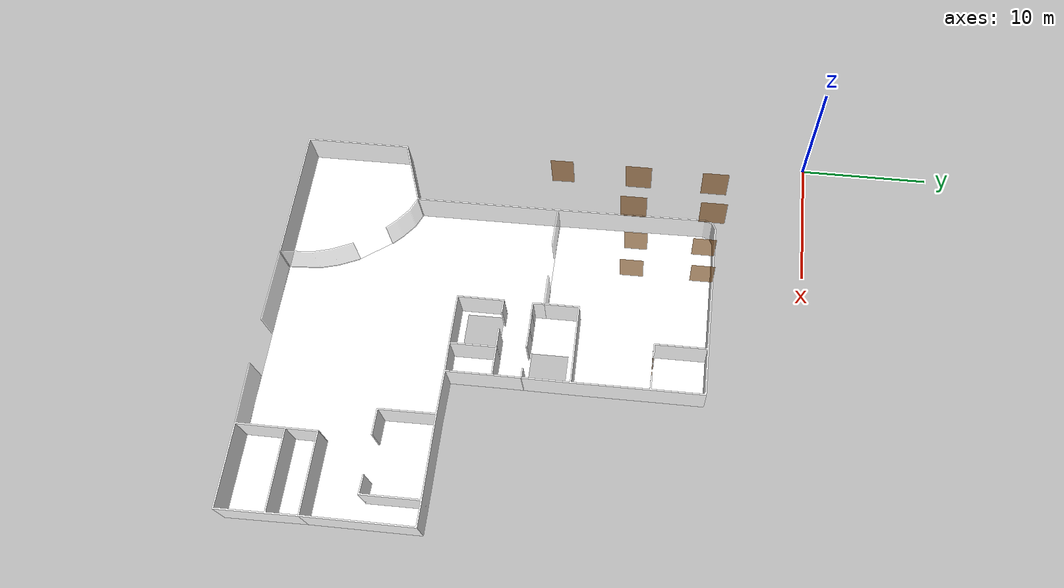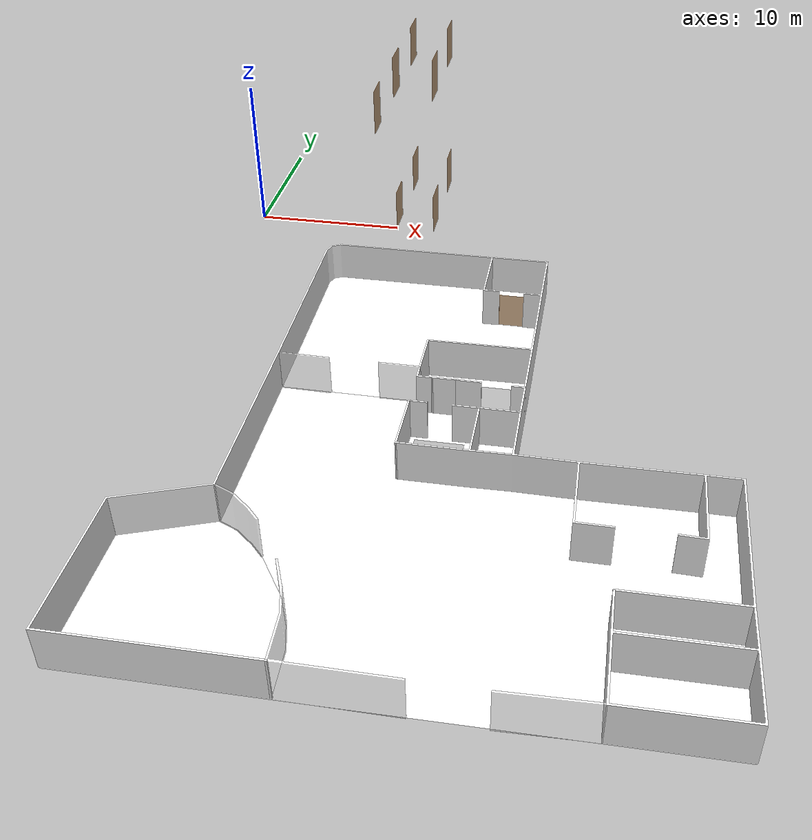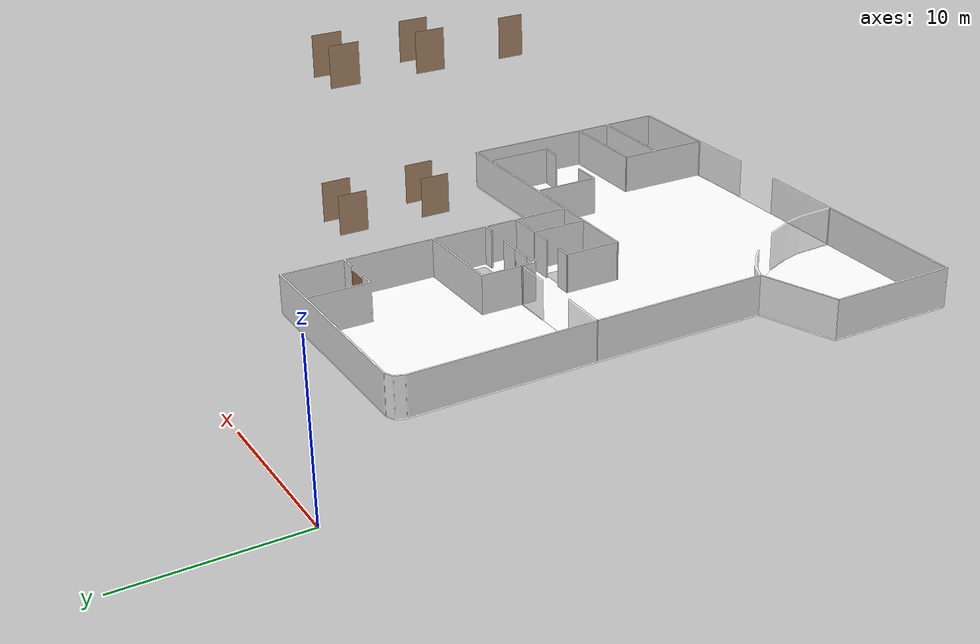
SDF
<sdf version="1.7">
 <world name="world">
  <include><uri>model://sun</uri></include>
  <model name="L1_door4">
   <pose>19.549120677562087 -11.10939551168469 0.0 0 0 -0.009497018345977264</pose>
   <link name="right">
    <pose>0 0 1.11 0 0 0</pose>
    <visual name="right_visual">
     <geometry><box><size>1.5905993122484277 0.03 2.2</size></box></geometry>
     <material><ambient>0.5 0.25 0 0.6</ambient><diffuse>0.5 0.25 0 0.6</diffuse></material>
    </visual>
    <collision name="right_collision">
     <geometry><box><size>1.5905993122484277 0.03 2.2</size></box></geometry>
     <surface><contact><collide_bitmask>0x02</collide_bitmask></contact></surface>
    </collision>
    <inertial>
     <mass>50.0</mass>
     <inertia><ixx>20.17041666666667</ixx><iyy>30.70835905052155</iyy><izz>10.545442383854882</izz></inertia>
    </inertial>
   </link>
   <joint name="right_joint" type="revolute">
    <parent>world</parent>
    <child>right</child>
    <axis><xyz>0 0 1</xyz><limit><lower>0</lower><upper>1.57</upper></limit></axis>
    <pose>0.8002996561242138 0 0 0 0 0</pose>
   </joint>
  </model>
  <include><name>hotel_L1</name><uri>model://hotel_L1_before</uri></include>
  <model name="L2_door11">
   <pose>13.070832545372092 -8.29507317951618 8.0 0 0 1.571612558028263</pose>
   <link name="right">
    <pose>0 0 1.11 0 0 0</pose>
    <visual name="right_visual">
     <geometry><box><size>1.5950330216253457 0.03 2.2</size></box></geometry>
     <material><ambient>0.5 0.25 0 0.6</ambient><diffuse>0.5 0.25 0 0.6</diffuse></material>
    </visual>
    <collision name="right_collision">
     <geometry><box><size>1.5950330216253457 0.03 2.2</size></box></geometry>
     <surface><contact><collide_bitmask>0x02</collide_bitmask></contact></surface>
    </collision>
    <inertial>
     <mass>50.0</mass>
     <inertia><ixx>20.17041666666667</ixx><iyy>30.767209750313672</iyy><izz>10.604293083647002</izz></inertia>
    </inertial>
   </link>
   <joint name="right_joint" type="revolute">
    <parent>world</parent>
    <child>right</child>
    <axis><xyz>0 0 -1</xyz><limit><lower>0</lower><upper>1.57</upper></limit></axis>
    <pose>0.8025165108126728 0 0 0 0 0</pose>
   </joint>
  </model>
  <model name="L2_door16">
   <pose>15.15470442617677 -8.29507317951618 8.0 0 0 1.571612558028263</pose>
   <link name="right">
    <pose>0 0 1.11 0 0 0</pose>
    <visual name="right_visual">
     <geometry><box><size>1.5950330216253457 0.03 2.2</size></box></geometry>
     <material><ambient>0.5 0.25 0 0.6</ambient><diffuse>0.5 0.25 0 0.6</diffuse></material>
    </visual>
    <collision name="right_collision">
     <geometry><box><size>1.5950330216253457 0.03 2.2</size></box></geometry>
     <surface><contact><collide_bitmask>0x02</collide_bitmask></contact></surface>
    </collision>
    <inertial>
     <mass>50.0</mass>
     <inertia><ixx>20.17041666666667</ixx><iyy>30.767209750313672</iyy><izz>10.604293083647002</izz></inertia>
    </inertial>
   </link>
   <joint name="right_joint" type="revolute">
    <parent>world</parent>
    <child>right</child>
    <axis><xyz>0 0 -1</xyz><limit><lower>0</lower><upper>1.57</upper></limit></axis>
    <pose>0.8025165108126728 0 0 0 0 0</pose>
   </joint>
  </model>
  <model name="L2_door17">
   <pose>13.010832545372092 -13.028327675 8.0 0 0 1.571612558028263</pose>
   <link name="right">
    <pose>0 0 1.11 0 0 0</pose>
    <visual name="right_visual">
     <geometry><box><size>1.5950330216253457 0.03 2.2</size></box></geometry>
     <material><ambient>0.5 0.25 0 0.6</ambient><diffuse>0.5 0.25 0 0.6</diffuse></material>
    </visual>
    <collision name="right_collision">
     <geometry><box><size>1.5950330216253457 0.03 2.2</size></box></geometry>
     <surface><contact><collide_bitmask>0x02</collide_bitmask></contact></surface>
    </collision>
    <inertial>
     <mass>50.0</mass>
     <inertia><ixx>20.17041666666667</ixx><iyy>30.767209750313672</iyy><izz>10.604293083647002</izz></inertia>
    </inertial>
   </link>
   <joint name="right_joint" type="revolute">
    <parent>world</parent>
    <child>right</child>
    <axis><xyz>0 0 -1</xyz><limit><lower>0</lower><upper>1.57</upper></limit></axis>
    <pose>0.8025165108126728 0 0 0 0 0</pose>
   </joint>
  </model>
  <model name="L2_door18">
   <pose>15.15470442617677 -13.148327675 8.0 0 0 1.571612558028263</pose>
   <link name="right">
    <pose>0 0 1.11 0 0 0</pose>
    <visual name="right_visual">
     <geometry><box><size>1.5950330216253457 0.03 2.2</size></box></geometry>
     <material><ambient>0.5 0.25 0 0.6</ambient><diffuse>0.5 0.25 0 0.6</diffuse></material>
    </visual>
    <collision name="right_collision">
     <geometry><box><size>1.5950330216253457 0.03 2.2</size></box></geometry>
     <surface><contact><collide_bitmask>0x02</collide_bitmask></contact></surface>
    </collision>
    <inertial>
     <mass>50.0</mass>
     <inertia><ixx>20.17041666666667</ixx><iyy>30.767209750313672</iyy><izz>10.604293083647002</izz></inertia>
    </inertial>
   </link>
   <joint name="right_joint" type="revolute">
    <parent>world</parent>
    <child>right</child>
    <axis><xyz>0 0 -1</xyz><limit><lower>0</lower><upper>1.57</upper></limit></axis>
    <pose>0.8025165108126728 0 0 0 0 0</pose>
   </joint>
  </model>
  <model name="L3_door9">
   <pose>13.018848337594756 -17.76158217016259 16.0 0 0 1.5874688733681936</pose>
   <link name="right">
    <pose>0 0 1.11 0 0 0</pose>
    <visual name="right_visual">
     <geometry><box><size>1.382945881897145 0.03 2.2</size></box></geometry>
     <material><ambient>0.5 0.25 0 0.6</ambient><diffuse>0.5 0.25 0 0.6</diffuse></material>
    </visual>
    <collision name="right_collision">
     <geometry><box><size>1.382945881897145 0.03 2.2</size></box></geometry>
     <surface><contact><collide_bitmask>0x02</collide_bitmask></contact></surface>
    </collision>
    <inertial>
     <mass>50.0</mass>
     <inertia><ixx>20.17041666666667</ixx><iyy>28.13558046773447</iyy><izz>7.9726638010677995</izz></inertia>
    </inertial>
   </link>
   <joint name="right_joint" type="revolute">
    <parent>world</parent>
    <child>right</child>
    <axis><xyz>0 0 -1</xyz><limit><lower>0</lower><upper>1.57</upper></limit></axis>
    <pose>0.6964729409485725 0 0 0 0 0</pose>
   </joint>
  </model>
  <model name="L3_door11">
   <pose>13.070832545372092 -8.29507317951618 16.0 0 0 1.571612558028263</pose>
   <link name="right">
    <pose>0 0 1.11 0 0 0</pose>
    <visual name="right_visual">
     <geometry><box><size>1.5950330216253457 0.03 2.2</size></box></geometry>
     <material><ambient>0.5 0.25 0 0.6</ambient><diffuse>0.5 0.25 0 0.6</diffuse></material>
    </visual>
    <collision name="right_collision">
     <geometry><box><size>1.5950330216253457 0.03 2.2</size></box></geometry>
     <surface><contact><collide_bitmask>0x02</collide_bitmask></contact></surface>
    </collision>
    <inertial>
     <mass>50.0</mass>
     <inertia><ixx>20.17041666666667</ixx><iyy>30.767209750313672</iyy><izz>10.604293083647002</izz></inertia>
    </inertial>
   </link>
   <joint name="right_joint" type="revolute">
    <parent>world</parent>
    <child>right</child>
    <axis><xyz>0 0 -1</xyz><limit><lower>0</lower><upper>1.57</upper></limit></axis>
    <pose>0.8025165108126728 0 0 0 0 0</pose>
   </joint>
  </model>
  <model name="L3_door16">
   <pose>15.15470442617677 -8.29507317951618 16.0 0 0 1.571612558028263</pose>
   <link name="right">
    <pose>0 0 1.11 0 0 0</pose>
    <visual name="right_visual">
     <geometry><box><size>1.5950330216253457 0.03 2.2</size></box></geometry>
     <material><ambient>0.5 0.25 0 0.6</ambient><diffuse>0.5 0.25 0 0.6</diffuse></material>
    </visual>
    <collision name="right_collision">
     <geometry><box><size>1.5950330216253457 0.03 2.2</size></box></geometry>
     <surface><contact><collide_bitmask>0x02</collide_bitmask></contact></surface>
    </collision>
    <inertial>
     <mass>50.0</mass>
     <inertia><ixx>20.17041666666667</ixx><iyy>30.767209750313672</iyy><izz>10.604293083647002</izz></inertia>
    </inertial>
   </link>
   <joint name="right_joint" type="revolute">
    <parent>world</parent>
    <child>right</child>
    <axis><xyz>0 0 -1</xyz><limit><lower>0</lower><upper>1.57</upper></limit></axis>
    <pose>0.8025165108126728 0 0 0 0 0</pose>
   </joint>
  </model>
  <model name="L3_door17">
   <pose>13.010832545372092 -13.028327675 16.0 0 0 1.571612558028263</pose>
   <link name="right">
    <pose>0 0 1.11 0 0 0</pose>
    <visual name="right_visual">
     <geometry><box><size>1.5950330216253457 0.03 2.2</size></box></geometry>
     <material><ambient>0.5 0.25 0 0.6</ambient><diffuse>0.5 0.25 0 0.6</diffuse></material>
    </visual>
    <collision name="right_collision">
     <geometry><box><size>1.5950330216253457 0.03 2.2</size></box></geometry>
     <surface><contact><collide_bitmask>0x02</collide_bitmask></contact></surface>
    </collision>
    <inertial>
     <mass>50.0</mass>
     <inertia><ixx>20.17041666666667</ixx><iyy>30.767209750313672</iyy><izz>10.604293083647002</izz></inertia>
    </inertial>
   </link>
   <joint name="right_joint" type="revolute">
    <parent>world</parent>
    <child>right</child>
    <axis><xyz>0 0 -1</xyz><limit><lower>0</lower><upper>1.57</upper></limit></axis>
    <pose>0.8025165108126728 0 0 0 0 0</pose>
   </joint>
  </model>
  <model name="L3_door18">
   <pose>15.15470442617677 -13.148327675 16.0 0 0 1.571612558028263</pose>
   <link name="right">
    <pose>0 0 1.11 0 0 0</pose>
    <visual name="right_visual">
     <geometry><box><size>1.5950330216253457 0.03 2.2</size></box></geometry>
     <material><ambient>0.5 0.25 0 0.6</ambient><diffuse>0.5 0.25 0 0.6</diffuse></material>
    </visual>
    <collision name="right_collision">
     <geometry><box><size>1.5950330216253457 0.03 2.2</size></box></geometry>
     <surface><contact><collide_bitmask>0x02</collide_bitmask></contact></surface>
    </collision>
    <inertial>
     <mass>50.0</mass>
     <inertia><ixx>20.17041666666667</ixx><iyy>30.767209750313672</iyy><izz>10.604293083647002</izz></inertia>
    </inertial>
   </link>
   <joint name="right_joint" type="revolute">
    <parent>world</parent>
    <child>right</child>
    <axis><xyz>0 0 -1</xyz><limit><lower>0</lower><upper>1.57</upper></limit></axis>
    <pose>0.8025165108126728 0 0 0 0 0</pose>
   </joint>
  </model>
 </world>
</sdf>
